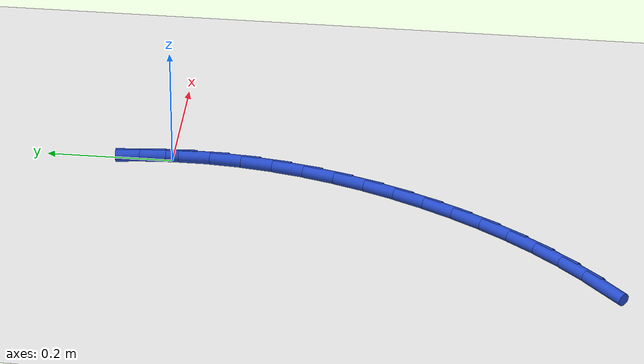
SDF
<sdf version="1.6">
 <world name="default">
  <model name="ground_plane">
   <static>1</static>
   <link name="link">
    <collision name="collision">
     <geometry><plane><normal>0 0 1</normal><size>100 100</size></plane></geometry>
     <surface><friction><ode><mu>100</mu><mu2>50</mu2></ode></friction></surface>
    </collision>
    <visual name="visual">
     <cast_shadows>0</cast_shadows>
     <geometry><plane><normal>0 0 1</normal><size>100 100</size></plane></geometry>
     <material>
      <script><uri>file://media/materials/scripts/gazebo.material</uri><name>Gazebo/WhiteGlow</name></script>
     </material>
    </visual>
   </link>
  </model>
  <model name="line">
   <link name="link_0">
    <pose>-2.0816681711721685e-17 1.1102230246251565e-16 0.01 0 1.57 -1.505520157094934</pose>
    <collision name="collision">
     <geometry><cylinder><radius>0.01</radius><length>0.08</length></cylinder></geometry>
    </collision>
    <visual name="visual">
     <material>
      <script><name>Gazebo/Blue</name><uri>file://media/materials/scripts/gazebo.material</uri></script>
     </material>
     <geometry><cylinder><radius>0.01</radius><length>0.08</length></cylinder></geometry>
    </visual>
   </link>
   <link name="link_1">
    <pose>-0.003271948268267561 0.050053483975474274 0.01 0 1.57 -1.4469356911556839</pose>
    <collision name="collision">
     <geometry><cylinder><radius>0.01</radius><length>0.08</length></cylinder></geometry>
    </collision>
    <visual name="visual">
     <material>
      <script><name>Gazebo/Blue</name><uri>file://media/materials/scripts/gazebo.material</uri></script>
     </material>
     <geometry><cylinder><radius>0.01</radius><length>0.08</length></cylinder></geometry>
    </visual>
   </link>
   <link name="link_135">
    <pose>-0.2803506833080514 -0.6965864103190059 0.01 0 1.57 0.8204053007574852</pose>
    <collision name="collision">
     <geometry><cylinder><radius>0.01</radius><length>0.08</length></cylinder></geometry>
    </collision>
    <visual name="visual">
     <material>
      <script><name>Gazebo/Blue</name><uri>file://media/materials/scripts/gazebo.material</uri></script>
     </material>
     <geometry><cylinder><radius>0.01</radius><length>0.08</length></cylinder></geometry>
    </visual>
   </link>
   <link name="link_136">
    <pose>-0.24590795392937517 -0.6596436582430965 0.01 0 1.57 0.8800724005517927</pose>
    <collision name="collision">
     <geometry><cylinder><radius>0.01</radius><length>0.08</length></cylinder></geometry>
    </collision>
    <visual name="visual">
     <material>
      <script><name>Gazebo/Blue</name><uri>file://media/materials/scripts/gazebo.material</uri></script>
     </material>
     <geometry><cylinder><radius>0.01</radius><length>0.08</length></cylinder></geometry>
    </visual>
   </link>
   <link name="link_137">
    <pose>-0.2134641243309617 -0.6203917349762186 0.01 0 1.57 0.936407848805233</pose>
    <collision name="collision">
     <geometry><cylinder><radius>0.01</radius><length>0.08</length></cylinder></geometry>
    </collision>
    <visual name="visual">
     <material>
      <script><name>Gazebo/Blue</name><uri>file://media/materials/scripts/gazebo.material</uri></script>
     </material>
     <geometry><cylinder><radius>0.01</radius><length>0.08</length></cylinder></geometry>
    </visual>
   </link>
   <link name="link_138">
    <pose>-0.18305631629175512 -0.5790687932788705 0.01 0 1.57 0.9898186611523031</pose>
    <collision name="collision">
     <geometry><cylinder><radius>0.01</radius><length>0.08</length></cylinder></geometry>
    </collision>
    <visual name="visual">
     <material>
      <script><name>Gazebo/Blue</name><uri>file://media/materials/scripts/gazebo.material</uri></script>
     </material>
     <geometry><cylinder><radius>0.01</radius><length>0.08</length></cylinder></geometry>
    </visual>
   </link>
   <link name="link_139">
    <pose>-0.15472165159069806 -0.5359129859115489 0.01 0 1.57 1.0407246579802425</pose>
    <collision name="collision">
     <geometry><cylinder><radius>0.01</radius><length>0.08</length></cylinder></geometry>
    </collision>
    <visual name="visual">
     <material>
      <script><name>Gazebo/Blue</name><uri>file://media/materials/scripts/gazebo.material</uri></script>
     </material>
     <geometry><cylinder><radius>0.01</radius><length>0.08</length></cylinder></geometry>
    </visual>
   </link>
   <link name="link_140">
    <pose>-0.128497252006735 -0.49116246563475274 0.01 0 1.57 1.089548640955206</pose>
    <collision name="collision">
     <geometry><cylinder><radius>0.01</radius><length>0.08</length></cylinder></geometry>
    </collision>
    <visual name="visual">
     <material>
      <script><name>Gazebo/Blue</name><uri>file://media/materials/scripts/gazebo.material</uri></script>
     </material>
     <geometry><cylinder><radius>0.01</radius><length>0.08</length></cylinder></geometry>
    </visual>
   </link>
   <link name="link_141">
    <pose>-0.10442023931880881 -0.4450553852089787 0.01 0 1.57 1.1367146287888263</pose>
    <collision name="collision">
     <geometry><cylinder><radius>0.01</radius><length>0.08</length></cylinder></geometry>
    </collision>
    <visual name="visual">
     <material>
      <script><name>Gazebo/Blue</name><uri>file://media/materials/scripts/gazebo.material</uri></script>
     </material>
     <geometry><cylinder><radius>0.01</radius><length>0.08</length></cylinder></geometry>
    </visual>
   </link>
   <link name="link_142">
    <pose>-0.08252784875246758 -0.3978297979416385 0.01 0 1.57 1.1833321701903066</pose>
    <collision name="collision">
     <geometry><cylinder><radius>0.01</radius><length>0.08</length></cylinder></geometry>
    </collision>
    <visual name="visual">
     <material>
      <script><name>Gazebo/Blue</name><uri>file://media/materials/scripts/gazebo.material</uri></script>
     </material>
     <geometry><cylinder><radius>0.01</radius><length>0.08</length></cylinder></geometry>
    </visual>
   </link>
   <link name="link_143">
    <pose>-0.06288586409734645 -0.34969873001099705 0.01 0 1.57 1.2313679466476226</pose>
    <collision name="collision">
     <geometry><cylinder><radius>0.01</radius><length>0.08</length></cylinder></geometry>
    </collision>
    <visual name="visual">
     <material>
      <script><name>Gazebo/Blue</name><uri>file://media/materials/scripts/gazebo.material</uri></script>
     </material>
     <geometry><cylinder><radius>0.01</radius><length>0.08</length></cylinder></geometry>
    </visual>
   </link>
   <link name="link_144">
    <pose>-0.045626129657952784 -0.30081729557451425 0.01 0 1.57 1.2813640483061457</pose>
    <collision name="collision">
     <geometry><cylinder><radius>0.01</radius><length>0.08</length></cylinder></geometry>
    </collision>
    <visual name="visual">
     <material>
      <script><name>Gazebo/Blue</name><uri>file://media/materials/scripts/gazebo.material</uri></script>
     </material>
     <geometry><cylinder><radius>0.01</radius><length>0.08</length></cylinder></geometry>
    </visual>
   </link>
   <link name="link_145">
    <pose>-0.030889806549432294 -0.25133244119767467 0.01 0 1.57 1.3336269273496573</pose>
    <collision name="collision">
     <geometry><cylinder><radius>0.01</radius><length>0.08</length></cylinder></geometry>
    </collision>
    <visual name="visual">
     <material>
      <script><name>Gazebo/Blue</name><uri>file://media/materials/scripts/gazebo.material</uri></script>
     </material>
     <geometry><cylinder><radius>0.01</radius><length>0.08</length></cylinder></geometry>
    </visual>
   </link>
   <link name="link_146">
    <pose>-0.018818055886929533 -0.20139111344595909 0.01 0 1.57 1.3884493955334387</pose>
    <collision name="collision">
     <geometry><cylinder><radius>0.01</radius><length>0.08</length></cylinder></geometry>
    </collision>
    <visual name="visual">
     <material>
      <script><name>Gazebo/Blue</name><uri>file://media/materials/scripts/gazebo.material</uri></script>
     </material>
     <geometry><cylinder><radius>0.01</radius><length>0.08</length></cylinder></geometry>
    </visual>
   </link>
   <link name="link_147">
    <pose>-0.009552038785589849 -0.15114025888485105 0.01 0 1.57 1.446100669338203</pose>
    <collision name="collision">
     <geometry><cylinder><radius>0.01</radius><length>0.08</length></cylinder></geometry>
    </collision>
    <visual name="visual">
     <material>
      <script><name>Gazebo/Blue</name><uri>file://media/materials/scripts/gazebo.material</uri></script>
     </material>
     <geometry><cylinder><radius>0.01</radius><length>0.08</length></cylinder></geometry>
    </visual>
   </link>
   <link name="link_148">
    <pose>-0.0032329163605584067 -0.100726824079834 0.01 0 1.57 1.5068122746990675</pose>
    <collision name="collision">
     <geometry><cylinder><radius>0.01</radius><length>0.08</length></cylinder></geometry>
    </collision>
    <visual name="visual">
     <material>
      <script><name>Gazebo/Blue</name><uri>file://media/materials/scripts/gazebo.material</uri></script>
     </material>
     <geometry><cylinder><radius>0.01</radius><length>0.08</length></cylinder></geometry>
    </visual>
   </link>
   <link name="link_149">
    <pose>-1.8497269800663713e-06 -0.05029775559638884 0.01 0 1.57 1.570759551257752</pose>
    <collision name="collision">
     <geometry><cylinder><radius>0.01</radius><length>0.08</length></cylinder></geometry>
    </collision>
    <visual name="visual">
     <material>
      <script><name>Gazebo/Blue</name><uri>file://media/materials/scripts/gazebo.material</uri></script>
     </material>
     <geometry><cylinder><radius>0.01</radius><length>0.08</length></cylinder></geometry>
    </visual>
   </link>
   <link name="link_150">
    <pose>-6.938893903907228e-18 1.1102230246251565e-16 0.01 0 1.57 -1.503553551727786</pose>
    <collision name="collision">
     <geometry><cylinder><radius>0.01</radius><length>0.08</length></cylinder></geometry>
    </collision>
    <visual name="visual">
     <material>
      <script><name>Gazebo/Blue</name><uri>file://media/materials/scripts/gazebo.material</uri></script>
     </material>
     <geometry><cylinder><radius>0.01</radius><length>0.08</length></cylinder></geometry>
    </visual>
   </link>
   <link name="link_151">
    <pose>-0.00336852829476339 0.05001949614385271 0.01 0 1.57 -1.5035535517277863</pose>
    <collision name="collision">
     <geometry><cylinder><radius>0.01</radius><length>0.08</length></cylinder></geometry>
    </collision>
    <visual name="visual">
     <material>
      <script><name>Gazebo/Blue</name><uri>file://media/materials/scripts/gazebo.material</uri></script>
     </material>
     <geometry><cylinder><radius>0.01</radius><length>0.08</length></cylinder></geometry>
    </visual>
   </link>
  </model>
 </world>
</sdf>
